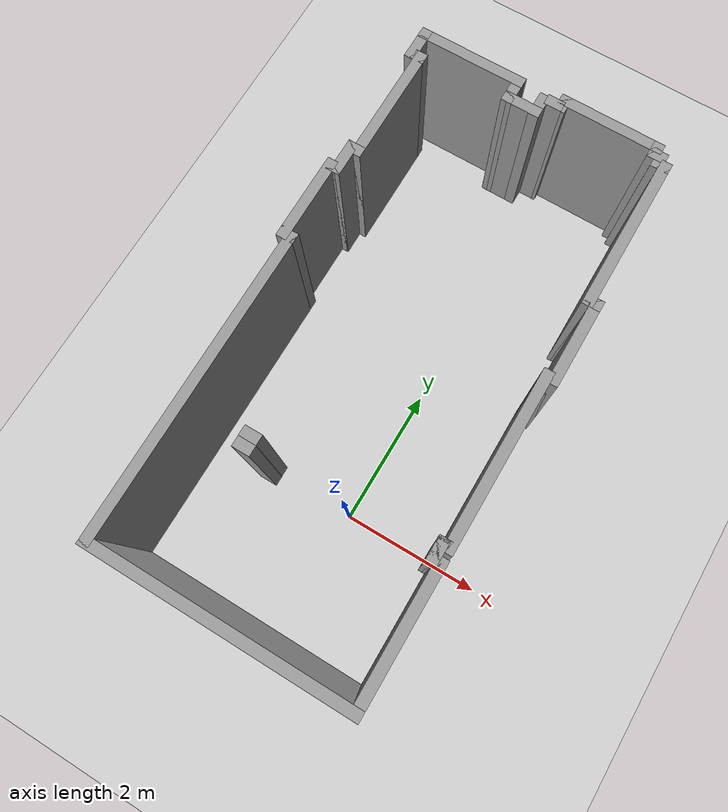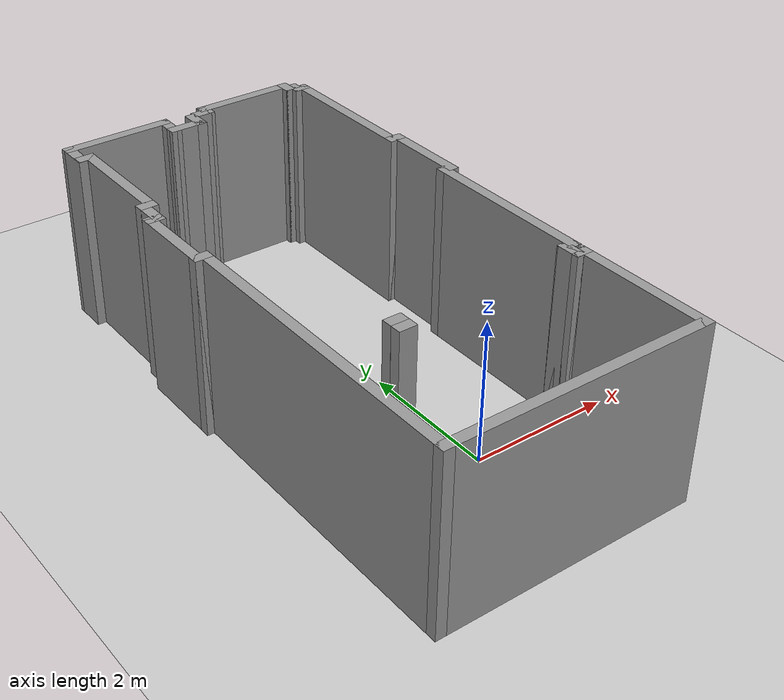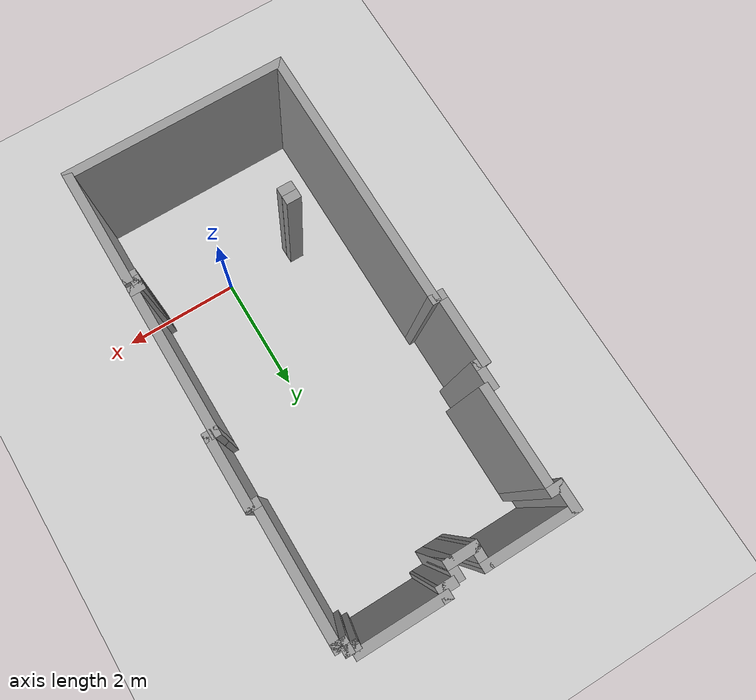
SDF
<sdf version="1.7">
 <world name="office_area">
  <physics name="1ms" type="ignored">
   <max_step_size>0.003</max_step_size>
   <real_time_factor>1</real_time_factor>
   <real_time_update_rate>1000</real_time_update_rate>
  </physics>
  <plugin filename="gz-sim-physics-system" name="gz::sim::systems::Physics"/>
  <plugin filename="gz-sim-user-commands-system" name="gz::sim::systems::UserCommands"/>
  <plugin filename="gz-sim-scene-broadcaster-system" name="gz::sim::systems::SceneBroadcaster"/>
  <plugin filename="gz-sim-imu-system" name="gz::sim::systems::Imu"/>
  <plugin name="gz::sim::systems::Contact" filename="gz-sim-contact-system"/>
  <light name="sun" type="directional">
   <pose>0 0 10 0 -0 0</pose>
   <diffuse>0.8 0.8 0.8 1</diffuse>
   <specular>0.2 0.2 0.2 1</specular>
   <attenuation>
    <range>1000</range>
    <constant>0.9</constant>
    <linear>0.01</linear>
    <quadratic>0.001</quadratic>
   </attenuation>
   <direction>-0.5 0.1 -0.9</direction>
   <spot><inner_angle>0</inner_angle><outer_angle>0</outer_angle><falloff>0</falloff></spot>
  </light>
  <gravity>0 0 -9.8</gravity>
  <magnetic_field>6e-06 2.3e-05 -4.2e-05</magnetic_field>
  <atmosphere type="adiabatic"/>
  <model name="ground_plane">
   <static>1</static>
   <link name="link">
    <collision name="collision">
     <geometry><plane><normal>0 0 1</normal><size>100 100</size></plane></geometry>
     <surface>
      <contact><collide_bitmask>65535</collide_bitmask></contact>
      <friction><ode><mu>100</mu><mu2>50</mu2></ode></friction>
     </surface>
    </collision>
    <visual name="visual">
     <cast_shadows>0</cast_shadows>
     <geometry><plane><normal>0 0 1</normal><size>100 100</size></plane></geometry>
     <material>
      <script><uri>file://media/materials/scripts/gazebo.material</uri><name>Gazebo/Grey</name></script>
     </material>
    </visual>
   </link>
  </model>
  <scene><ambient>0.4 0.4 0.4 1</ambient><background>0.7 0.7 0.7 1</background><shadows>0</shadows></scene>
  <spherical_coordinates>
   <surface_model>EARTH_WGS84</surface_model>
   <latitude_deg>0</latitude_deg>
   <longitude_deg>0</longitude_deg>
   <elevation>0</elevation>
   <heading_deg>0</heading_deg>
  </spherical_coordinates>
  <model name="corridor_C069_3">
   <pose>-0.418372 5.68543 0 0 -0 0</pose>
   <link name="Wall_20">
    <collision name="Wall_20_Collision">
     <geometry><box><size>1.49249 0.15 2.5</size></box></geometry>
     <pose>0 0 1.25 0 -0 0</pose>
    </collision>
    <visual name="Wall_20_Visual">
     <pose>0 0 1.25 0 -0 0</pose>
     <geometry><box><size>1.49249 0.15 2.5</size></box></geometry>
     <material>
      <script><uri>file://media/materials/scripts/gazebo.material</uri><name>Gazebo/Grey</name></script>
      <ambient>1 1 1 1</ambient>
     </material>
     <meta><layer>0</layer></meta>
    </visual>
    <pose>0.928781 0.196171 0 0 -0 0</pose>
   </link>
   <link name="Wall_21">
    <collision name="Wall_21_Collision">
     <geometry><box><size>0.25 0.15 2.5</size></box></geometry>
     <pose>0 0 1.25 0 -0 0</pose>
    </collision>
    <visual name="Wall_21_Visual">
     <pose>0 0 1.25 0 -0 0</pose>
     <geometry><box><size>0.25 0.15 2.5</size></box></geometry>
     <material>
      <script><uri>file://media/materials/scripts/gazebo.material</uri><name>Gazebo/Grey</name></script>
      <ambient>1 1 1 1</ambient>
     </material>
     <meta><layer>0</layer></meta>
    </visual>
    <pose>1.6 0.146171 0 0 -0 -1.5708</pose>
   </link>
   <link name="Wall_22">
    <collision name="Wall_22_Collision">
     <geometry><box><size>0.25 0.15 2.5</size></box></geometry>
     <pose>0 0 1.25 0 -0 0</pose>
    </collision>
    <visual name="Wall_22_Visual">
     <pose>0 0 1.25 0 -0 0</pose>
     <geometry><box><size>0.25 0.15 2.5</size></box></geometry>
     <material>
      <script><uri>file://media/materials/scripts/gazebo.material</uri><name>Gazebo/Grey</name></script>
      <ambient>1 1 1 1</ambient>
     </material>
     <meta><layer>0</layer></meta>
    </visual>
    <pose>1.65 0.096171 0 0 -0 0</pose>
   </link>
   <link name="Wall_23">
    <collision name="Wall_23_Collision">
     <geometry><box><size>0.25 0.15 2.5</size></box></geometry>
     <pose>0 0 1.25 0 -0 0</pose>
    </collision>
    <visual name="Wall_23_Visual">
     <pose>0 0 1.25 0 -0 0</pose>
     <geometry><box><size>0.25 0.15 2.5</size></box></geometry>
     <material>
      <script><uri>file://media/materials/scripts/gazebo.material</uri><name>Gazebo/Grey</name></script>
      <ambient>1 1 1 1</ambient>
     </material>
     <meta><layer>0</layer></meta>
    </visual>
    <pose>1.7 0.046171 0 0 -0 -1.5708</pose>
   </link>
   <link name="Wall_24">
    <collision name="Wall_24_Collision">
     <geometry><box><size>0.25 0.15 2.5</size></box></geometry>
     <pose>0 0 1.25 0 -0 0</pose>
    </collision>
    <visual name="Wall_24_Visual">
     <pose>0 0 1.25 0 -0 0</pose>
     <geometry><box><size>0.25 0.15 2.5</size></box></geometry>
     <material>
      <script><uri>file://media/materials/scripts/gazebo.material</uri><name>Gazebo/Grey</name></script>
      <ambient>1 1 1 1</ambient>
     </material>
     <meta><layer>0</layer></meta>
    </visual>
    <pose>1.75 -0.003829 0 0 -0 0</pose>
   </link>
   <link name="Wall_25">
    <collision name="Wall_25_Collision">
     <geometry><box><size>2.25 0.15 2.5</size></box></geometry>
     <pose>0 0 1.25 0 -0 0</pose>
    </collision>
    <visual name="Wall_25_Visual">
     <pose>0 0 1.25 0 -0 0</pose>
     <geometry><box><size>2.25 0.15 2.5</size></box></geometry>
     <material>
      <script><uri>file://media/materials/scripts/gazebo.material</uri><name>Gazebo/Grey</name></script>
      <ambient>1 1 1 1</ambient>
     </material>
     <meta><layer>0</layer></meta>
    </visual>
    <pose>1.8 -1.05383 0 0 -0 -1.5708</pose>
   </link>
   <link name="Wall_26">
    <collision name="Wall_26_Collision">
     <geometry><box><size>0.25 0.15 2.5</size></box></geometry>
     <pose>0 0 1.25 0 -0 0</pose>
    </collision>
    <visual name="Wall_26_Visual">
     <pose>0 0 1.25 0 -0 0</pose>
     <geometry><box><size>0.25 0.15 2.5</size></box></geometry>
     <material>
      <script><uri>file://media/materials/scripts/gazebo.material</uri><name>Gazebo/Grey</name></script>
      <ambient>1 1 1 1</ambient>
     </material>
     <meta><layer>0</layer></meta>
    </visual>
    <pose>1.85 -2.10383 0 0 -0 0</pose>
   </link>
   <link name="Wall_27">
    <collision name="Wall_27_Collision">
     <geometry><box><size>1.25 0.15 2.5</size></box></geometry>
     <pose>0 0 1.25 0 -0 0</pose>
    </collision>
    <visual name="Wall_27_Visual">
     <pose>0 0 1.25 0 -0 0</pose>
     <geometry><box><size>1.25 0.15 2.5</size></box></geometry>
     <material>
      <script><uri>file://media/materials/scripts/gazebo.material</uri><name>Gazebo/Grey</name></script>
      <ambient>1 1 1 1</ambient>
     </material>
     <meta><layer>0</layer></meta>
    </visual>
    <pose>1.9 -2.65383 0 0 -0 -1.5708</pose>
   </link>
   <link name="Wall_28">
    <collision name="Wall_28_Collision">
     <geometry><box><size>0.25 0.15 2.5</size></box></geometry>
     <pose>0 0 1.25 0 -0 0</pose>
    </collision>
    <visual name="Wall_28_Visual">
     <pose>0 0 1.25 0 -0 0</pose>
     <geometry><box><size>0.25 0.15 2.5</size></box></geometry>
     <material>
      <script><uri>file://media/materials/scripts/gazebo.material</uri><name>Gazebo/Grey</name></script>
      <ambient>1 1 1 1</ambient>
     </material>
     <meta><layer>0</layer></meta>
    </visual>
    <pose>1.85 -3.20383 0 0 -0 3.14159</pose>
   </link>
   <link name="Wall_29">
    <collision name="Wall_29_Collision">
     <geometry><box><size>2.5 0.15 2.5</size></box></geometry>
     <pose>0 0 1.25 0 -0 0</pose>
    </collision>
    <visual name="Wall_29_Visual">
     <pose>0 0 1.25 0 -0 0</pose>
     <geometry><box><size>2.5 0.15 2.5</size></box></geometry>
     <material>
      <script><uri>file://media/materials/scripts/gazebo.material</uri><name>Gazebo/Grey</name></script>
      <ambient>1 1 1 1</ambient>
     </material>
     <meta><layer>0</layer></meta>
    </visual>
    <pose>1.8 -4.37883 0 0 -0 -1.5708</pose>
   </link>
   <link name="Wall_30">
    <collision name="Wall_30_Collision">
     <geometry><box><size>0.25 0.15 2.5</size></box></geometry>
     <pose>0 0 1.25 0 -0 0</pose>
    </collision>
    <visual name="Wall_30_Visual">
     <pose>0 0 1.25 0 -0 0</pose>
     <geometry><box><size>0.25 0.15 2.5</size></box></geometry>
     <material>
      <script><uri>file://media/materials/scripts/gazebo.material</uri><name>Gazebo/Grey</name></script>
      <ambient>1 1 1 1</ambient>
     </material>
     <meta><layer>0</layer></meta>
    </visual>
    <pose>1.75 -5.55383 0 0 -0 3.14159</pose>
   </link>
   <link name="Wall_31">
    <collision name="Wall_31_Collision">
     <geometry><box><size>0.25 0.15 2.5</size></box></geometry>
     <pose>0 0 1.25 0 -0 0</pose>
    </collision>
    <visual name="Wall_31_Visual">
     <pose>0 0 1.25 0 -0 0</pose>
     <geometry><box><size>0.25 0.15 2.5</size></box></geometry>
     <material>
      <script><uri>file://media/materials/scripts/gazebo.material</uri><name>Gazebo/Grey</name></script>
      <ambient>1 1 1 1</ambient>
     </material>
     <meta><layer>0</layer></meta>
    </visual>
    <pose>1.7 -5.60383 0 0 -0 -1.5708</pose>
   </link>
   <link name="Wall_32">
    <collision name="Wall_32_Collision">
     <geometry><box><size>0.25 0.15 2.5</size></box></geometry>
     <pose>0 0 1.25 0 -0 0</pose>
    </collision>
    <visual name="Wall_32_Visual">
     <pose>0 0 1.25 0 -0 0</pose>
     <geometry><box><size>0.25 0.15 2.5</size></box></geometry>
     <material>
      <script><uri>file://media/materials/scripts/gazebo.material</uri><name>Gazebo/Grey</name></script>
      <ambient>1 1 1 1</ambient>
     </material>
     <meta><layer>0</layer></meta>
    </visual>
    <pose>1.7 -5.70383 0 0 -0 -1.5708</pose>
   </link>
   <link name="Wall_33">
    <collision name="Wall_33_Collision">
     <geometry><box><size>0.25 0.15 2.5</size></box></geometry>
     <pose>0 0 1.25 0 -0 0</pose>
    </collision>
    <visual name="Wall_33_Visual">
     <pose>0 0 1.25 0 -0 0</pose>
     <geometry><box><size>0.25 0.15 2.5</size></box></geometry>
     <material>
      <script><uri>file://media/materials/scripts/gazebo.material</uri><name>Gazebo/Grey</name></script>
      <ambient>1 1 1 1</ambient>
     </material>
     <meta><layer>0</layer></meta>
    </visual>
    <pose>1.75 -5.75383 0 0 -0 0</pose>
   </link>
   <link name="Wall_34">
    <collision name="Wall_34_Collision">
     <geometry><box><size>2 0.15 2.5</size></box></geometry>
     <pose>0 0 1.25 0 -0 0</pose>
    </collision>
    <visual name="Wall_34_Visual">
     <pose>0 0 1.25 0 -0 0</pose>
     <geometry><box><size>2 0.15 2.5</size></box></geometry>
     <material>
      <script><uri>file://media/materials/scripts/gazebo.material</uri><name>Gazebo/Grey</name></script>
      <ambient>1 1 1 1</ambient>
     </material>
     <meta><layer>0</layer></meta>
    </visual>
    <pose>1.8 -6.67883 0 0 -0 -1.5708</pose>
   </link>
   <link name="Wall_35">
    <collision name="Wall_35_Collision">
     <geometry><box><size>3.75 0.15 2.5</size></box></geometry>
     <pose>0 0 1.25 0 -0 0</pose>
    </collision>
    <visual name="Wall_35_Visual">
     <pose>0 0 1.25 0 -0 0</pose>
     <geometry><box><size>3.75 0.15 2.5</size></box></geometry>
     <material>
      <script><uri>file://media/materials/scripts/gazebo.material</uri><name>Gazebo/Grey</name></script>
      <ambient>1 1 1 1</ambient>
     </material>
     <meta><layer>0</layer></meta>
    </visual>
    <pose>-0 -7.60383 0 0 -0 3.14159</pose>
   </link>
   <link name="Wall_36">
    <collision name="Wall_36_Collision">
     <geometry><box><size>4.5 0.15 2.5</size></box></geometry>
     <pose>0 0 1.25 0 -0 0</pose>
    </collision>
    <visual name="Wall_36_Visual">
     <pose>0 0 1.25 0 -0 0</pose>
     <geometry><box><size>4.5 0.15 2.5</size></box></geometry>
     <material>
      <script><uri>file://media/materials/scripts/gazebo.material</uri><name>Gazebo/Grey</name></script>
      <ambient>1 1 1 1</ambient>
     </material>
     <meta><layer>0</layer></meta>
    </visual>
    <pose>-1.8 -5.42883 0 0 -0 1.5708</pose>
   </link>
   <link name="Wall_37">
    <collision name="Wall_37_Collision">
     <geometry><box><size>0.25 0.15 2.5</size></box></geometry>
     <pose>0 0 1.25 0 -0 0</pose>
    </collision>
    <visual name="Wall_37_Visual">
     <pose>0 0 1.25 0 -0 0</pose>
     <geometry><box><size>0.25 0.15 2.5</size></box></geometry>
     <material>
      <script><uri>file://media/materials/scripts/gazebo.material</uri><name>Gazebo/Grey</name></script>
      <ambient>1 1 1 1</ambient>
     </material>
     <meta><layer>0</layer></meta>
    </visual>
    <pose>-1.85 -3.25383 0 0 -0 3.14159</pose>
   </link>
   <link name="Wall_38">
    <collision name="Wall_38_Collision">
     <geometry><box><size>1.25 0.15 2.5</size></box></geometry>
     <pose>0 0 1.25 0 -0 0</pose>
    </collision>
    <visual name="Wall_38_Visual">
     <pose>0 0 1.25 0 -0 0</pose>
     <geometry><box><size>1.25 0.15 2.5</size></box></geometry>
     <material>
      <script><uri>file://media/materials/scripts/gazebo.material</uri><name>Gazebo/Grey</name></script>
      <ambient>1 1 1 1</ambient>
     </material>
     <meta><layer>0</layer></meta>
    </visual>
    <pose>-1.9 -2.70383 0 0 -0 1.5708</pose>
   </link>
   <link name="Wall_39">
    <collision name="Wall_39_Collision">
     <geometry><box><size>0.25 0.15 2.5</size></box></geometry>
     <pose>0 0 1.25 0 -0 0</pose>
    </collision>
    <visual name="Wall_39_Visual">
     <pose>0 0 1.25 0 -0 0</pose>
     <geometry><box><size>0.25 0.15 2.5</size></box></geometry>
     <material>
      <script><uri>file://media/materials/scripts/gazebo.material</uri><name>Gazebo/Grey</name></script>
      <ambient>1 1 1 1</ambient>
     </material>
     <meta><layer>0</layer></meta>
    </visual>
    <pose>-1.85 -2.15383 0 0 -0 0</pose>
   </link>
   <link name="Wall_40">
    <collision name="Wall_40_Collision">
     <geometry><box><size>0.5 0.15 2.5</size></box></geometry>
     <pose>0 0 1.25 0 -0 0</pose>
    </collision>
    <visual name="Wall_40_Visual">
     <pose>0 0 1.25 0 -0 0</pose>
     <geometry><box><size>0.5 0.15 2.5</size></box></geometry>
     <material>
      <script><uri>file://media/materials/scripts/gazebo.material</uri><name>Gazebo/Grey</name></script>
      <ambient>1 1 1 1</ambient>
     </material>
     <meta><layer>0</layer></meta>
    </visual>
    <pose>-1.8 -1.97883 0 0 -0 1.5708</pose>
   </link>
   <link name="Wall_41">
    <collision name="Wall_41_Collision">
     <geometry><box><size>0.25 0.15 2.5</size></box></geometry>
     <pose>0 0 1.25 0 -0 0</pose>
    </collision>
    <visual name="Wall_41_Visual">
     <pose>0 0 1.25 0 -0 0</pose>
     <geometry><box><size>0.25 0.15 2.5</size></box></geometry>
     <material>
      <script><uri>file://media/materials/scripts/gazebo.material</uri><name>Gazebo/Grey</name></script>
      <ambient>1 1 1 1</ambient>
     </material>
     <meta><layer>0</layer></meta>
    </visual>
    <pose>-1.75 -1.80383 0 0 -0 0</pose>
   </link>
   <link name="Wall_42">
    <collision name="Wall_42_Collision">
     <geometry><box><size>1.75 0.15 2.5</size></box></geometry>
     <pose>0 0 1.25 0 -0 0</pose>
    </collision>
    <visual name="Wall_42_Visual">
     <pose>0 0 1.25 0 -0 0</pose>
     <geometry><box><size>1.75 0.15 2.5</size></box></geometry>
     <material>
      <script><uri>file://media/materials/scripts/gazebo.material</uri><name>Gazebo/Grey</name></script>
      <ambient>1 1 1 1</ambient>
     </material>
     <meta><layer>0</layer></meta>
    </visual>
    <pose>-1.7 -1.00383 0 0 -0 1.5708</pose>
   </link>
   <link name="Wall_43">
    <collision name="Wall_43_Collision">
     <geometry><box><size>0.265123 0.15 2.5</size></box></geometry>
     <pose>0 0 1.25 0 -0 0</pose>
    </collision>
    <visual name="Wall_43_Visual">
     <pose>0 0 1.25 0 -0 0</pose>
     <geometry><box><size>0.265123 0.15 2.5</size></box></geometry>
     <material>
      <script><uri>file://media/materials/scripts/gazebo.material</uri><name>Gazebo/Grey</name></script>
      <ambient>1 1 1 1</ambient>
     </material>
     <meta><layer>0</layer></meta>
    </visual>
    <pose>-1.75756 -0.203829 0 0 -0 3.14159</pose>
   </link>
   <link name="Wall_55">
    <collision name="Wall_55_Collision">
     <geometry><box><size>0.25 0.15 2.5</size></box></geometry>
     <pose>0 0 1.25 0 -0 0</pose>
    </collision>
    <visual name="Wall_55_Visual">
     <pose>0 0 1.25 0 -0 0</pose>
     <geometry><box><size>0.25 0.15 2.5</size></box></geometry>
     <material>
      <script><uri>file://media/materials/scripts/gazebo.material</uri><name>Gazebo/Grey</name></script>
      <ambient>1 1 1 1</ambient>
     </material>
     <meta><layer>0</layer></meta>
    </visual>
    <pose>0.257561 0.146171 0 0 -0 -1.5708</pose>
   </link>
   <link name="Wall_70">
    <collision name="Wall_70_Collision">
     <geometry><box><size>0.5 0.15 2.5</size></box></geometry>
     <pose>0 0 1.25 0 -0 0</pose>
    </collision>
    <visual name="Wall_70_Visual">
     <pose>0 0 1.25 0 -0 0</pose>
     <geometry><box><size>0.5 0.15 2.5</size></box></geometry>
     <material>
      <script><uri>file://media/materials/scripts/gazebo.material</uri><name>Gazebo/Grey</name></script>
      <ambient>1 1 1 1</ambient>
     </material>
     <meta><layer>0</layer></meta>
    </visual>
    <pose>-1.8252 -0.035245 0 0 -0 1.57061</pose>
   </link>
   <link name="Wall_72">
    <collision name="Wall_72_Collision">
     <geometry><box><size>1.57393 0.15 2.5</size></box></geometry>
     <pose>0 0 1.25 0 -0 0</pose>
    </collision>
    <visual name="Wall_72_Visual">
     <pose>0 0 1.25 0 -0 0</pose>
     <geometry><box><size>1.57393 0.15 2.5</size></box></geometry>
     <material>
      <script><uri>file://media/materials/scripts/gazebo.material</uri><name>Gazebo/Grey</name></script>
      <ambient>1 1 1 1</ambient>
     </material>
     <meta><layer>0</layer></meta>
    </visual>
    <pose>-1.11321 0.141792 0 0 -0 0.002861</pose>
   </link>
   <link name="Wall_73">
    <collision name="Wall_73_Collision">
     <geometry><box><size>0.427948 0.15 2.5</size></box></geometry>
     <pose>0 0 1.25 0 -0 0</pose>
    </collision>
    <visual name="Wall_73_Visual">
     <pose>0 0 1.25 0 -0 0</pose>
     <geometry><box><size>0.427948 0.15 2.5</size></box></geometry>
     <material>
      <script><uri>file://media/materials/scripts/gazebo.material</uri><name>Gazebo/Grey</name></script>
      <ambient>1 1 1 1</ambient>
     </material>
     <meta><layer>0</layer></meta>
    </visual>
    <pose>-0.402244 0.004829 0 0 -0 -1.57799</pose>
   </link>
   <link name="Wall_74">
    <collision name="Wall_74_Collision">
     <geometry><box><size>0.55 0.15 2.5</size></box></geometry>
     <pose>0 0 1.25 0 -0 0</pose>
    </collision>
    <visual name="Wall_74_Visual">
     <pose>0 0 1.25 0 -0 0</pose>
     <geometry><box><size>0.55 0.15 2.5</size></box></geometry>
     <material>
      <script><uri>file://media/materials/scripts/gazebo.material</uri><name>Gazebo/Grey</name></script>
      <ambient>1 1 1 1</ambient>
     </material>
     <meta><layer>0</layer></meta>
    </visual>
    <pose>-0.203244 -0.134171 0 0 -0 0</pose>
   </link>
   <link name="Wall_76">
    <collision name="Wall_76_Collision">
     <geometry><box><size>0.35 0.15 2.5</size></box></geometry>
     <pose>0 0 1.25 0 -0 0</pose>
    </collision>
    <visual name="Wall_76_Visual">
     <pose>0 0 1.25 0 -0 0</pose>
     <geometry><box><size>0.35 0.15 2.5</size></box></geometry>
     <material>
      <script><uri>file://media/materials/scripts/gazebo.material</uri><name>Gazebo/Grey</name></script>
      <ambient>1 1 1 1</ambient>
     </material>
     <meta><layer>0</layer></meta>
    </visual>
    <pose>-0.003244 -0.034171 0 0 -0 1.5708</pose>
   </link>
   <link name="Wall_79">
    <collision name="Wall_79_Collision">
     <geometry><box><size>0.25 0.15 2.5</size></box></geometry>
     <pose>0 0 1.25 0 -0 0</pose>
    </collision>
    <visual name="Wall_79_Visual">
     <pose>0 0 1.25 0 -0 0</pose>
     <geometry><box><size>0.25 0.15 2.5</size></box></geometry>
     <material>
      <script><uri>file://media/materials/scripts/gazebo.material</uri><name>Gazebo/Grey</name></script>
      <ambient>1 1 1 1</ambient>
     </material>
     <meta><layer>0</layer></meta>
    </visual>
    <pose>0.156723 0.095823 0 0 -0 0</pose>
   </link>
   <link name="Wall_83">
    <collision name="Wall_83_Collision">
     <geometry><box><size>0.25 0.15 2.5</size></box></geometry>
     <pose>0 0 1.25 0 -0 0</pose>
    </collision>
    <visual name="Wall_83_Visual">
     <pose>0 0 1.25 0 -0 0</pose>
     <geometry><box><size>0.25 0.15 2.5</size></box></geometry>
     <material>
      <script><uri>file://media/materials/scripts/gazebo.material</uri><name>Gazebo/Grey</name></script>
      <ambient>1 1 1 1</ambient>
     </material>
     <meta><layer>0</layer></meta>
    </visual>
    <pose>-0.851803 -5.62142 0 0 -0 0</pose>
   </link>
   <link name="Wall_85">
    <collision name="Wall_85_Collision">
     <geometry><box><size>0.25 0.15 2.5</size></box></geometry>
     <pose>0 0 1.25 0 -0 0</pose>
    </collision>
    <visual name="Wall_85_Visual">
     <pose>0 0 1.25 0 -0 0</pose>
     <geometry><box><size>0.25 0.15 2.5</size></box></geometry>
     <material>
      <script><uri>file://media/materials/scripts/gazebo.material</uri><name>Gazebo/Grey</name></script>
      <ambient>1 1 1 1</ambient>
     </material>
     <meta><layer>0</layer></meta>
    </visual>
    <pose>-0.849881 -5.76859 0 0 -0 0</pose>
   </link>
   <static>1</static>
  </model>
 </world>
</sdf>
